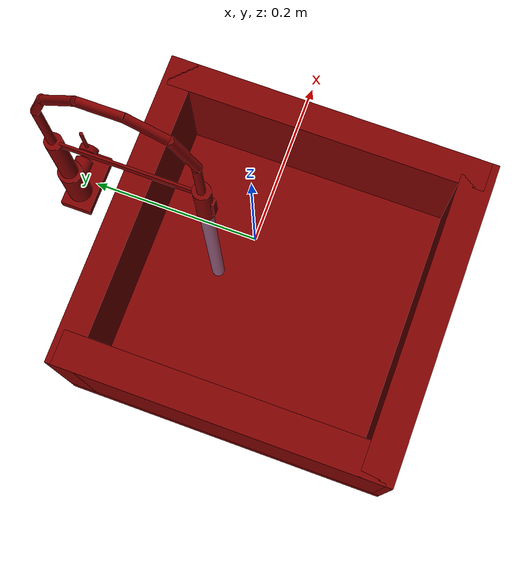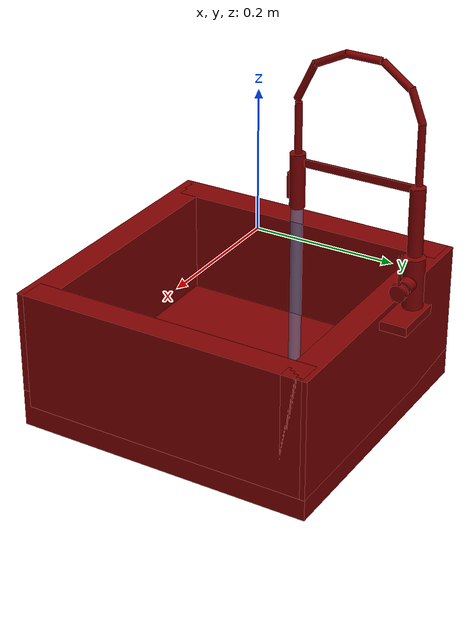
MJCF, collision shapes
<?xml version='1.0' encoding='UTF-8'?>
<mujoco model="model">
  <option timestep="0.002" gravity="0.0 0.0 -9.81"/>
  <compiler angle="radian"/>
  <asset>
    <mesh file="visuals/handle.obj" name="handle_vis"/>
    <mesh file="visuals/Body001.obj" name="Body001_vis"/>
    <mesh file="visuals/spout.obj" name="spout_vis"/>
    <texture file="visuals/T_BC001.png" name="Body001_material" type="2d"/>
    <material name="Body001_material" rgba="1 1 1 1.0" texture="Body001_material" shininess="0.1" specular="0.9"/>
    <texture file="visuals/T_BC001.png" name="handle_material" type="2d"/>
    <material name="handle_material" rgba="1 1 1 1.0" texture="handle_material" shininess="0.1" specular="0.9"/>
    <texture file="visuals/T_BC001.png" name="spout_material" type="2d"/>
    <material name="spout_material" rgba="1 1 1 1.0" texture="spout_material" shininess="0.1" specular="0.9"/>
  </asset>
  <default>
    <default class="visual">
      <geom conaffinity="0" contype="0" group="1" type="mesh"/>
    </default>
    <default class="collision">
      <geom group="0" rgba="0.5 0 0 0.5" solimp="0.998 0.998 0.001" solref="0.001 2"/>
    </default>
    <default class="spawn">
      <geom group="0" rgba="1 1 1 0.5" contype="0" conaffinity="0"/>
      <site group="0" rgba="1 1 1 0.5"/>
    </default>
    <default class="region">
      <geom group="1" conaffinity="0" contype="0" rgba="0 1 0 0"/>
    </default>
  </default>
  <worldbody>
    <body>
      <body name="object">
        <geom mesh="Body001_vis" type="mesh" solimp="0.998 0.998 0.001" solref="0.001 1" friction="0.95 0.3 0.1" class="visual" material="Body001_material"/>
        <geom class="collision" type="box" pos="0.00000010 -0.02723934 -0.24971938" size="0.21356330811977386 0.2224341630935669 0.027828527614474297" quat="1.0 0.0 0.0 0.0"/>
        <geom class="collision" type="box" pos="0.00000008 -0.22821340 -0.15838618" size="0.21356332302093506 0.021460069343447685 0.08808031678199768" quat="1.0 0.0 0.0 0.0"/>
        <geom class="collision" type="box" pos="0.00000005 0.17633932 -0.15838618" size="0.21356338262557983 0.018855499103665352 0.08808031678199768" quat="1.0 0.0 0.0 0.0"/>
        <geom class="collision" type="box" pos="0.19384086 -0.02623338 -0.15838618" size="0.019722601398825645 0.21366256475448608 0.08808031678199768" quat="1.0 0.0 0.0 0.0"/>
        <geom class="collision" type="box" pos="-0.19070537 -0.02623338 -0.15838618" size="0.02285793609917164 0.21366256475448608 0.08808031678199768" quat="1.0 0.0 0.0 0.0"/>
        <geom class="collision" type="box" pos="0.01479127 0.23080759 -0.06365855" size="0.037191566079854965 0.019080042839050293 0.006647302769124508" quat="1.0 0.0 0.0 0.0"/>
        <geom class="collision" type="cylinder" pos="-0.00117334 0.23184376 -0.01816747" size="0.014722767286002636 0.035603467375040054" quat="1.0 0.0 0.0 0.0"/>
        <geom class="collision" type="cylinder" pos="0.01772805 0.23094559 -0.01612609" size="0.01090774405747652 0.009847342036664486" quat="0.7071068286895752 -0.0 0.7071067690849304 0.0"/>
        <body name="handle">
          <joint axis="1.0 0.0 0.0" pos="0.03685264 0.23096340 -0.01635845" limited="true" name="handle_temp_joint" type="hinge" range="-0.7853981633974483 0.7853981633974483" damping="0.5" frictionloss="1" armature="2"/>
          <joint axis="0.0 1.0 0.0" pos="0.03685264 0.23096340 -0.01635845" limited="true" name="handle_joint" type="hinge" range="0 0.5" damping="0.5" frictionloss="1" armature="2"/>
          <geom mesh="handle_vis" type="mesh" solimp="0.998 0.998 0.001" solref="0.001 1" friction="0.95 0.3 0.1" class="visual" material="handle_material"/>
          <geom name="handle_main" class="collision" type="cylinder" pos="0.04065097 0.23094559 0.01637959" size="0.0021245551761239767 0.021682260558009148" quat="1.0 0.0 0.0 0.0"/>
          <geom class="collision" type="cylinder" pos="0.04046332 0.23094559 -0.01612609" size="0.011749033816158772 0.004021472297608852" quat="0.7071068286895752 -0.0 0.7071067690849304 0.0"/>
        </body>
        <body name="spout">
          <joint axis="0.0 0.0 1.0" pos="-0.00125000 0.23182844 0.16170767" limited="true" name="spout_joint" range="-0.7853981633974483 0.7853981633974483" type="hinge" damping="10"/>
          <site type="cylinder" rgba="0.5 0.75 1 0.5" size="0.008400022983551025 0.1558043658733368" pos="-0.00121276 0.05851951 -0.10721771" name="water"/>
          <geom mesh="spout_vis" type="mesh" solimp="0.998 0.998 0.001" solref="0.001 1" friction="0.95 0.3 0.1" class="visual" material="spout_material"/>
          <geom class="collision" type="cylinder" pos="-0.00117334 0.23171637 0.06826868" size="0.010490449145436287 0.0471460057497024536" quat="1.0 0.0 0.0 0.0" name="spout_main"/>
          <geom class="collision" type="cylinder" pos="-0.00155641 0.23216756 0.15987796" size="0.00506379920989275 0.041539017111063004" quat="1.0 0.0 0.0 0.0"/>
          <geom class="collision" type="cylinder" pos="-0.00155642 0.22384206 0.22274806" size="0.00506379920989275 0.024297237396240234" quat="0.9829229712486267 0.1840173751115799 0.0 0.0"/>
          <geom class="collision" type="cylinder" pos="-0.00155642 0.19497781 0.25728132" size="0.00506379920989275 0.024297237396240234" quat="0.8916955590248108 0.4526357054710388 0.0 0.0"/>
          <geom class="collision" type="cylinder" pos="-0.00155642 0.14936345 0.27180085" size="0.00506379920989275 0.024297237396240234" quat="0.7119148969650269 0.702265739440918 1.9894496097094492e-18 -2.1740198673544782e-18"/>
          <geom class="collision" type="cylinder" pos="-0.00155642 0.10434016 0.26193269" size="0.00506379920989275 0.024297237396240234" quat="0.5284743905067444 0.8489492535591125 2.441664287508514e-18 -1.6500137706016298e-18"/>
          <geom class="collision" type="cylinder" pos="-0.00155642 0.06893397 0.22529845" size="0.00506379920989275 0.029924193397164345" quat="0.21848298609256744 0.9758407473564148 2.8496198394523167e-18 -7.511655576927601e-19"/>
          <geom class="collision" type="cylinder" pos="-0.00155641 0.05851950 0.15921471" size="0.00506379920989275 0.0355721190571785" quat="1.0 0.0 0.0 0.0"/>
          <geom class="collision" type="cylinder" pos="-0.00121276 0.05851950 0.08494469" size="0.010660765692591667 0.03866029903292656" quat="1.0 0.0 0.0 0.0"/>
          <geom class="collision" type="box" pos="-0.00141570 0.14590306 0.11163712" size="0.0014512402703985572 0.07775963097810745 0.005529983434826136" quat="1.0 0.0 0.0 0.0"/>
          <geom class="collision" type="box" pos="-0.00109286 0.04718370 0.07634044" size="0.004602022003382444 0.0018451862270012498 0.01818827912211418" quat="1.0 0.0 0.0 0.0"/>
        </body>
        <geom class="region" name="reg_basin" type="box" pos="0.0009517599999999959 -0.027191284999999996 -0.143973695" size="0.16202133 0.171441785 0.074948635"/>
        <geom class="region" name="reg_main" type="box" pos="-4.999999997368221e-09 -0.027239324999999995 -0.17417639000000001" size="0.214563235 0.22343416500000002 0.10487054000000001"/>
      </body>
    </body>
  </worldbody>
  <actuator>
    <motor name="handle_joint_actuator" joint="handle_joint" gear="10"/>
    <motor name="handle_temp_joint_actuator" joint="handle_temp_joint" gear="10"/>
    <motor name="spout_joint_actuator" joint="spout_joint" gear="10"/>
  </actuator>
</mujoco>
